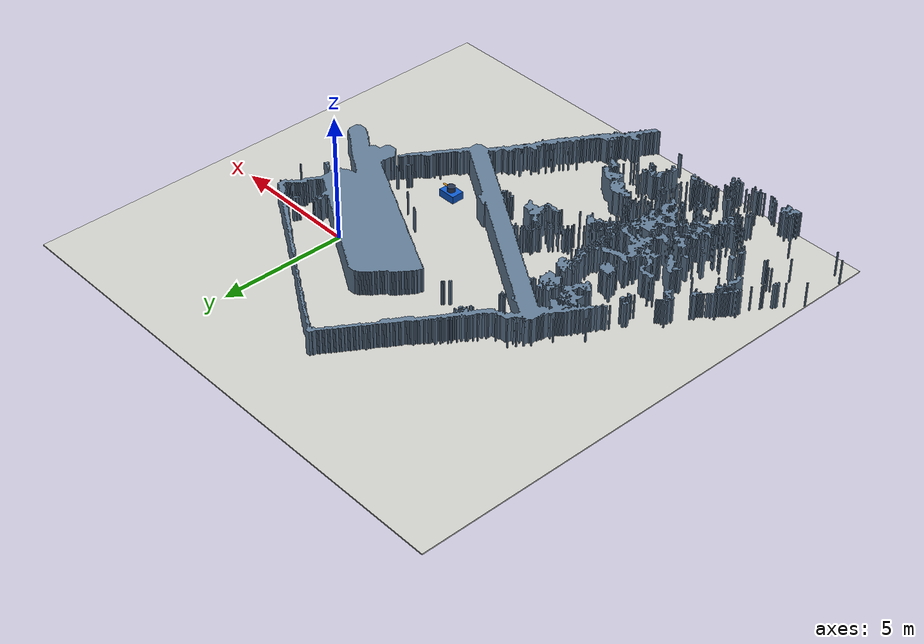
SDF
<?xml version='1.0' encoding='utf-8'?>
<sdf version="1.8">
  <!--Generated by map_assets.py: map-aligned ideal planar scene, real lidar, no contact dynamics.-->
  <world name="sentry_planning">
    <physics name="fixed_step" type="ignored">
      <max_step_size>0.01</max_step_size>
      <real_time_factor>1</real_time_factor>
    </physics>
    <gravity>0 0 0</gravity>
    <plugin filename="ignition-gazebo-physics-system" name="ignition::gazebo::systems::Physics" />
    <plugin filename="ignition-gazebo-user-commands-system" name="ignition::gazebo::systems::UserCommands" />
    <plugin filename="ignition-gazebo-scene-broadcaster-system" name="ignition::gazebo::systems::SceneBroadcaster" />
    <scene>
      <ambient>0.65 0.65 0.65 1</ambient>
      <background>0.82 0.86 0.9 1</background>
      <shadows>false</shadows>
    </scene>
    <light name="sun" type="directional">
      <pose>0 0 10 0 0 0</pose>
      <diffuse>0.8 0.8 0.8 1</diffuse>
      <specular>0.1 0.1 0.1 1</specular>
      <direction>-0.3 0.2 -1</direction>
      <cast_shadows>false</cast_shadows>
    </light>
    <gui fullscreen="false">
      <plugin filename="MinimalScene" name="3D View">
        <ignition-gui>
          <title>RM Sentry - Basic Navigation</title>
          <property type="bool" key="showTitleBar">false</property>
          <property type="string" key="state">docked</property>
        </ignition-gui>
        <engine>ogre2</engine>
        <scene>scene</scene>
        <ambient_light>0.65 0.65 0.65</ambient_light>
        <background_color>0.82 0.86 0.9</background_color>
        <camera_pose>4 -10 12 0 0.92 2.2</camera_pose>
      </plugin>
      <plugin filename="GzSceneManager" name="Scene Manager">
        <ignition-gui>
          <property type="bool" key="resizable">false</property>
          <property type="double" key="width">5</property>
          <property type="double" key="height">5</property>
          <property type="string" key="state">floating</property>
          <property type="bool" key="showTitleBar">false</property>
        </ignition-gui>
      </plugin>
      <plugin filename="InteractiveViewControl" name="View Control">
        <ignition-gui>
          <property type="bool" key="resizable">false</property>
          <property type="double" key="width">5</property>
          <property type="double" key="height">5</property>
          <property type="string" key="state">floating</property>
          <property type="bool" key="showTitleBar">false</property>
        </ignition-gui>
      </plugin>
      <plugin filename="WorldControl" name="World Control">
        <ignition-gui>
          <property type="bool" key="showTitleBar">false</property>
          <property type="string" key="state">floating</property>
          <property type="double" key="width">120</property>
          <property type="double" key="height">65</property>
          <property type="double" key="x">0</property>
          <property type="double" key="y">0</property>
        </ignition-gui>
        <play_pause>true</play_pause>
        <step>true</step>
        <start_paused>false</start_paused>
      </plugin>
      <plugin filename="WorldStats" name="World Stats">
        <ignition-gui>
          <property type="bool" key="showTitleBar">false</property>
          <property type="string" key="state">floating</property>
          <property type="double" key="width">280</property>
          <property type="double" key="height">110</property>
          <property type="double" key="x">0</property>
          <property type="double" key="y">70</property>
        </ignition-gui>
        <sim_time>true</sim_time>
        <real_time>true</real_time>
        <real_time_factor>true</real_time_factor>
        <iterations>true</iterations>
      </plugin>
    </gui>
    <include>
      <uri>model://sentry_lidar</uri>
      <name>sentry</name>
      <pose>-0.919 -4.454 0 0 0 0</pose>
    </include>
    <plugin filename="ignition-gazebo-sensors-system" name="ignition::gazebo::systems::Sensors">
      <render_engine>ogre2</render_engine>
    </plugin>
    <include>
      <uri>model://planning_map</uri>
    </include>
    <model name="ground">
      <static>true</static>
      <pose>-3.394 -2.0790000000000006 -0.03 0 0 0</pose>
      <link name="ground">
        <visual name="floor">
          <geometry>
            <box>
              <size>20 20 0.05</size>
            </box>
          </geometry>
          <material>
            <ambient>0.8 0.8 0.78 1</ambient>
            <diffuse>0.8 0.8 0.78 1</diffuse>
          </material>
        </visual>
      </link>
    </model>
  </world>
</sdf>

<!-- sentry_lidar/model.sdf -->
<sdf version="1.8">
  <!--Generated by lidar_assets.py: stage-one model with a real 360x4, 5 Hz lidar.-->
  <model name="sentry">
    <pose>0 0 0 0 0 0</pose>
    <link name="base_link">
      <gravity>false</gravity>
      <inertial>
        <mass>10</mass>
        <inertia>
          <ixx>1</ixx>
          <iyy>1</iyy>
          <izz>1</izz>
        </inertia>
      </inertial>
      <visual name="body">
        <pose>0 0 0.25 0 0 0</pose>
        <geometry>
          <box>
            <size>0.7 0.5 0.3</size>
          </box>
        </geometry>
        <material>
          <ambient>0.05 0.3 0.65 1</ambient>
          <diffuse>0.05 0.35 0.8 1</diffuse>
        </material>
      </visual>
      <visual name="front">
        <pose>0.36 0 0.25 0 0 0</pose>
        <geometry>
          <box>
            <size>0.03 0.35 0.15</size>
          </box>
        </geometry>
        <material>
          <ambient>1 0.2 0.05 1</ambient>
          <diffuse>1 0.2 0.05 1</diffuse>
        </material>
      </visual>
      <visual name="turret">
        <pose>0 0 0.49 0 0 0</pose>
        <geometry>
          <cylinder>
            <radius>0.16</radius>
            <length>0.18</length>
          </cylinder>
        </geometry>
        <material>
          <ambient>0.1 0.14 0.2 1</ambient>
          <diffuse>0.15 0.2 0.3 1</diffuse>
        </material>
      </visual>
      <visual name="front_pointer">
        <pose>0.24 0 0.5 0 1.5707963 0</pose>
        <geometry>
          <cylinder>
            <radius>0.035</radius>
            <length>0.3</length>
          </cylinder>
        </geometry>
        <material>
          <ambient>1 0.65 0.1 1</ambient>
          <diffuse>1 0.65 0.1 1</diffuse>
        </material>
      </visual>
      <sensor name="lidar_sensor" type="gpu_lidar">
        <pose>0 0 0.7 0 0 0</pose>
        <topic>/sentry/lidar</topic>
        <update_rate>5</update_rate>
        <always_on>true</always_on>
        <visualize>false</visualize>
        <lidar>
          <scan>
            <horizontal>
              <samples>360</samples>
              <resolution>1</resolution>
              <min_angle>-3.141592653589793</min_angle>
              <max_angle>3.141592653589793</max_angle>
            </horizontal>
            <vertical>
              <samples>4</samples>
              <resolution>1</resolution>
              <min_angle>-0.1</min_angle>
              <max_angle>0.1</max_angle>
            </vertical>
          </scan>
          <range>
            <min>0.2</min>
            <max>10</max>
            <resolution>0.01</resolution>
          </range>
        </lidar>
      </sensor>
    </link>
    <plugin filename="ignition-gazebo-velocity-control-system" name="ignition::gazebo::systems::VelocityControl">
      <topic>/model/sentry/cmd_vel</topic>
    </plugin>
    <plugin filename="libsentry_resume_guard.so" name="sentry_gazebo::ResumeGuard" />
    <plugin filename="ignition-gazebo-odometry-publisher-system" name="ignition::gazebo::systems::OdometryPublisher">
      <odom_frame>odom</odom_frame>
      <robot_base_frame>base_link</robot_base_frame>
      <dimensions>2</dimensions>
      <odom_publish_frequency>50</odom_publish_frequency>
      <odom_topic>/model/sentry/odometry</odom_topic>
    </plugin>
  </model>
</sdf>

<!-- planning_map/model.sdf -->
<!-- Raw occupancy mesh without robot-radius inflation or contact dynamics. -->
<sdf version="1.8"><model name="planning_map"><static>true</static><link name="map"><visual name="obstacles"><geometry><mesh><uri>meshes/obstacles.dae</uri></mesh></geometry><material><ambient>0.38 0.48 0.58 1</ambient><diffuse>0.38 0.48 0.58 1</diffuse></material></visual></link></model></sdf>
